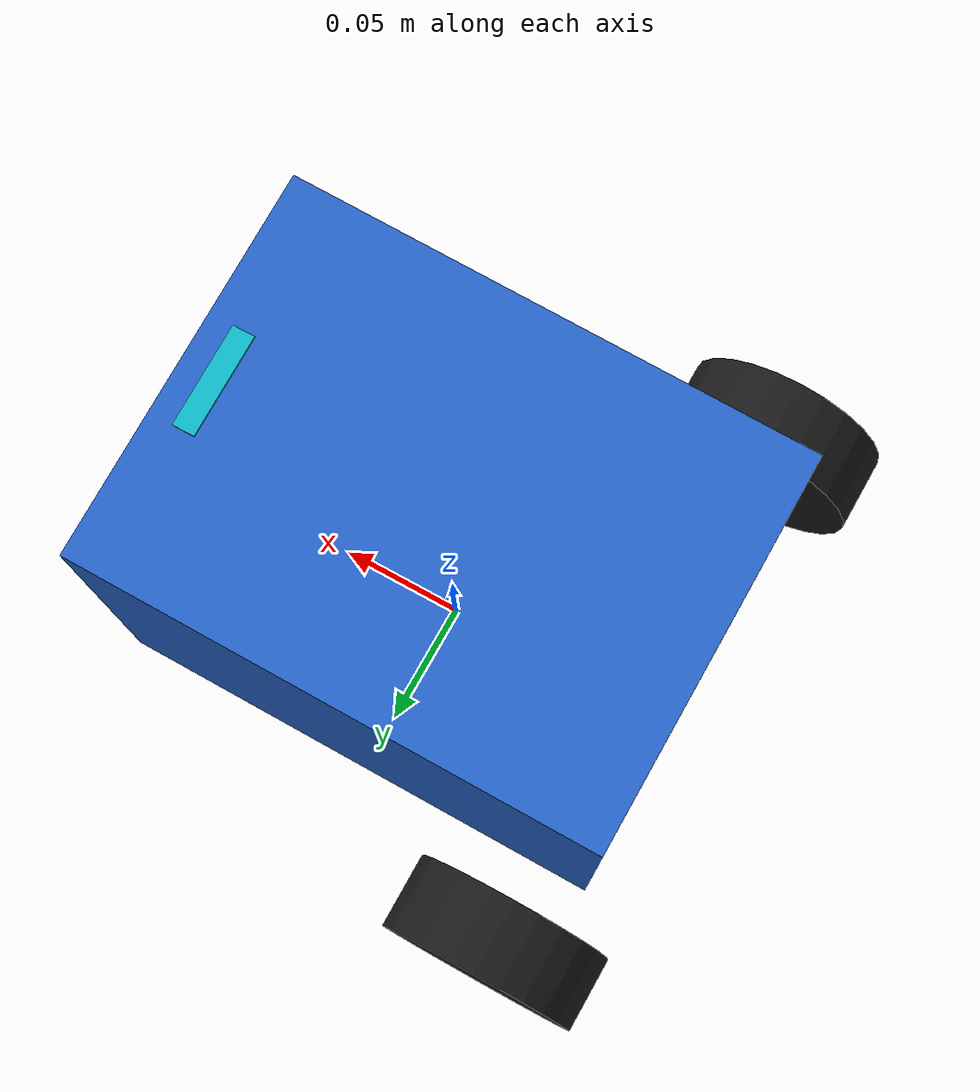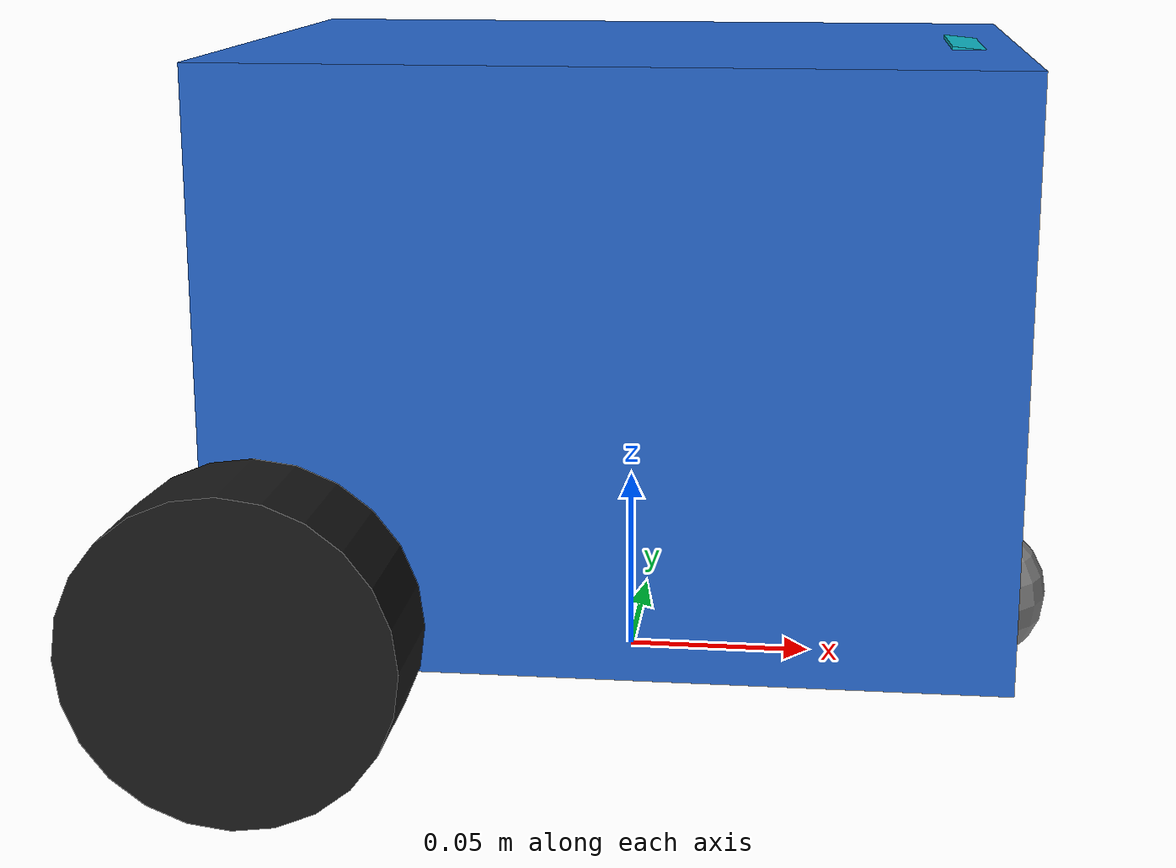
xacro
<?xml version="1.0"?>
<robot xmlns:xacro="http://www.ros.org/wiki/xacro" name="petbot">

  <!-- ===================== 几何参数 ===================== -->
  <!-- 主体：前后长 20cm × 宽 15cm × 高 15cm；质量加大且重心压低防翻 -->
  <xacro:property name="base_length" value="0.20"/>
  <xacro:property name="base_width" value="0.15"/>
  <xacro:property name="base_height" value="0.15"/>
  <xacro:property name="base_mass" value="15.0"/>

  <xacro:property name="wheel_radius" value="0.04"/>
  <xacro:property name="wheel_width" value="0.03"/>
  <xacro:property name="wheel_mass" value="0.5"/>
  <!-- 支撑三角形尽量铺开 -->
  <xacro:property name="wheel_separation" value="0.22"/>
  <xacro:property name="wheel_x_offset" value="-0.08"/>
  <xacro:property name="base_z" value="${wheel_radius}"/>
  <!-- 视觉厢体上移；惯性中心贴近轮轴高度，降低翻车力矩 -->
  <xacro:property name="base_z_offset" value="${base_height/2 - 0.02}"/>
  <xacro:property name="base_com_z" value="0.015"/>

  <xacro:property name="caster_radius" value="0.02"/>
  <xacro:property name="caster_mass" value="0.12"/>
  <xacro:property name="caster_x" value="${base_length/2 - 0.005}"/>

  <!-- Nebula280MIPI：头部（前面中间靠上），轻微上仰 -->
  <xacro:property name="nebula280_x" value="${base_length/2 - 0.01}"/>
  <xacro:property name="nebula280_z" value="${base_z_offset + base_height/2 - 0.008}"/>
  <xacro:property name="nebula280_pitch" value="0.10"/>

  <xacro:macro name="box_inertia" params="m l w h">
    <inertia
      ixx="${(m/12.0) * (w*w + h*h)}" ixy="0.0" ixz="0.0"
      iyy="${(m/12.0) * (l*l + h*h)}" iyz="0.0"
      izz="${(m/12.0) * (l*l + w*w)}"/>
  </xacro:macro>

  <xacro:macro name="cylinder_inertia" params="m r h">
    <inertia
      ixx="${(m/12.0) * (3*r*r + h*h)}" ixy="0.0" ixz="0.0"
      iyy="${(m/12.0) * (3*r*r + h*h)}" iyz="0.0"
      izz="${(m/2.0) * r*r}"/>
  </xacro:macro>

  <xacro:macro name="sphere_inertia" params="m r">
    <inertia
      ixx="${(2.0/5.0) * m * r*r}" ixy="0.0" ixz="0.0"
      iyy="${(2.0/5.0) * m * r*r}" iyz="0.0"
      izz="${(2.0/5.0) * m * r*r}"/>
  </xacro:macro>

  <material name="blue"><color rgba="0.15 0.40 0.80 1.0"/></material>
  <material name="black"><color rgba="0.10 0.10 0.10 1.0"/></material>
  <material name="gray"><color rgba="0.55 0.55 0.55 1.0"/></material>

  <link name="base_footprint"/>

  <joint name="base_joint" type="fixed">
    <parent link="base_footprint"/>
    <child link="base_link"/>
    <origin xyz="0 0 ${base_z}" rpy="0 0 0"/>
  </joint>

  <link name="base_link">
    <visual>
      <origin xyz="0 0 ${base_z_offset}" rpy="0 0 0"/>
      <geometry>
        <box size="${base_length} ${base_width} ${base_height}"/>
      </geometry>
      <material name="blue"/>
    </visual>
    <collision>
      <origin xyz="0 0 ${base_z_offset}" rpy="0 0 0"/>
      <geometry>
        <box size="${base_length} ${base_width} ${base_height}"/>
      </geometry>
    </collision>
    <inertial>
      <!-- 重心靠近轮轴高度，视觉仍用较高厢体 -->
      <origin xyz="0 0 ${base_com_z}" rpy="0 0 0"/>
      <mass value="${base_mass}"/>
      <xacro:box_inertia m="${base_mass}" l="${base_length}" w="${base_width}" h="${base_height * 0.35}"/>
    </inertial>
  </link>

  <xacro:macro name="drive_wheel" params="prefix y_reflect">
    <link name="${prefix}_wheel_link">
      <visual>
        <origin xyz="0 0 0" rpy="${pi/2} 0 0"/>
        <geometry>
          <cylinder radius="${wheel_radius}" length="${wheel_width}"/>
        </geometry>
        <material name="black"/>
      </visual>
      <collision>
        <origin xyz="0 0 0" rpy="0 0 0"/>
        <geometry>
          <sphere radius="${wheel_radius}"/>
        </geometry>
      </collision>
      <inertial>
        <origin xyz="0 0 0" rpy="${pi/2} 0 0"/>
        <mass value="${wheel_mass}"/>
        <xacro:cylinder_inertia m="${wheel_mass}" r="${wheel_radius}" h="${wheel_width}"/>
      </inertial>
    </link>

    <joint name="${prefix}_wheel_joint" type="continuous">
      <parent link="base_link"/>
      <child link="${prefix}_wheel_link"/>
      <origin xyz="${wheel_x_offset} ${y_reflect * wheel_separation / 2} 0" rpy="0 0 0"/>
      <axis xyz="0 1 0"/>
      <dynamics damping="0.2" friction="0.2"/>
    </joint>
  </xacro:macro>

  <xacro:drive_wheel prefix="left" y_reflect="1"/>
  <xacro:drive_wheel prefix="right" y_reflect="-1"/>

  <link name="caster_link">
    <visual>
      <origin xyz="0 0 0" rpy="0 0 0"/>
      <geometry>
        <sphere radius="${caster_radius}"/>
      </geometry>
      <material name="gray"/>
    </visual>
    <collision>
      <origin xyz="0 0 0" rpy="0 0 0"/>
      <geometry>
        <sphere radius="${caster_radius}"/>
      </geometry>
    </collision>
    <inertial>
      <origin xyz="0 0 0" rpy="0 0 0"/>
      <mass value="${caster_mass}"/>
      <xacro:sphere_inertia m="${caster_mass}" r="${caster_radius}"/>
    </inertial>
  </link>

  <joint name="caster_joint" type="fixed">
    <parent link="base_link"/>
    <child link="caster_link"/>
    <origin xyz="${caster_x} 0 ${-base_z + caster_radius}" rpy="0 0 0"/>
  </joint>

  <!-- 传感器：六轴 IMU + Nebula280MIPI -->
  <xacro:include filename="$(find petbot_description)/urdf/sensors/imu_6axis.urdf.xacro"/>
  <xacro:imu_6axis parent="base_link">
    <!-- 靠近底盘几何中心、略高于厢体底板 -->
    <origin xyz="0 0 ${base_z_offset - base_height/2 + 0.01}" rpy="0 0 0"/>
  </xacro:imu_6axis>

  <xacro:include filename="$(find petbot_description)/urdf/sensors/nebula280_mipi.urdf.xacro"/>
  <xacro:nebula280_mipi parent="base_link">
    <origin xyz="${nebula280_x} 0 ${nebula280_z}" rpy="0 ${nebula280_pitch} 0"/>
  </xacro:nebula280_mipi>

  <xacro:include filename="$(find petbot_description)/urdf/petbot.gazebo.xacro"/>

</robot>

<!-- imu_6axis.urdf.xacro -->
<!--
  六轴 IMU：3 轴加速度计 + 3 轴陀螺仪
  话题：/imu/data  (sensor_msgs/Imu)
  坐标系：imu_link（与车体平行，原点靠近底盘几何中心）
-->
<robot xmlns:xacro="http://www.ros.org/wiki/xacro">

  <xacro:macro name="imu_6axis" params="parent *origin">
    <xacro:property name="imu_size" value="0.012"/>
    <xacro:property name="imu_mass" value="0.01"/>

    <link name="imu_link">
      <visual>
        <origin xyz="0 0 0" rpy="0 0 0"/>
        <geometry>
          <box size="${imu_size} ${imu_size} ${imu_size * 0.5}"/>
        </geometry>
        <material name="imu_orange">
          <color rgba="0.95 0.45 0.05 1.0"/>
        </material>
      </visual>
      <collision>
        <origin xyz="0 0 0" rpy="0 0 0"/>
        <geometry>
          <box size="${imu_size} ${imu_size} ${imu_size * 0.5}"/>
        </geometry>
      </collision>
      <inertial>
        <origin xyz="0 0 0" rpy="0 0 0"/>
        <mass value="${imu_mass}"/>
        <inertia
          ixx="${(imu_mass/12.0)*(imu_size*imu_size*0.25 + imu_size*imu_size)}"
          ixy="0" ixz="0"
          iyy="${(imu_mass/12.0)*(imu_size*imu_size*0.25 + imu_size*imu_size)}"
          iyz="0"
          izz="${(imu_mass/12.0)*(imu_size*imu_size + imu_size*imu_size)}"/>
      </inertial>
    </link>

    <joint name="imu_joint" type="fixed">
      <parent link="${parent}"/>
      <child link="imu_link"/>
      <xacro:insert_block name="origin"/>
    </joint>

    <gazebo reference="imu_link">
      <material>Gazebo/Orange</material>
      <sensor name="imu_sensor" type="imu">
        <always_on>true</always_on>
        <update_rate>100</update_rate>
        <visualize>false</visualize>
        <imu>
          <angular_velocity>
            <x>
              <noise type="gaussian">
                <mean>0.0</mean>
                <stddev>0.0002</stddev>
                <bias_mean>0.00001</bias_mean>
                <bias_stddev>0.000001</bias_stddev>
              </noise>
            </x>
            <y>
              <noise type="gaussian">
                <mean>0.0</mean>
                <stddev>0.0002</stddev>
                <bias_mean>0.00001</bias_mean>
                <bias_stddev>0.000001</bias_stddev>
              </noise>
            </y>
            <z>
              <noise type="gaussian">
                <mean>0.0</mean>
                <stddev>0.0002</stddev>
                <bias_mean>0.00001</bias_mean>
                <bias_stddev>0.000001</bias_stddev>
              </noise>
            </z>
          </angular_velocity>
          <linear_acceleration>
            <x>
              <noise type="gaussian">
                <mean>0.0</mean>
                <stddev>0.017</stddev>
                <bias_mean>0.1</bias_mean>
                <bias_stddev>0.001</bias_stddev>
              </noise>
            </x>
            <y>
              <noise type="gaussian">
                <mean>0.0</mean>
                <stddev>0.017</stddev>
                <bias_mean>0.1</bias_mean>
                <bias_stddev>0.001</bias_stddev>
              </noise>
            </y>
            <z>
              <noise type="gaussian">
                <mean>0.0</mean>
                <stddev>0.017</stddev>
                <bias_mean>0.1</bias_mean>
                <bias_stddev>0.001</bias_stddev>
              </noise>
            </z>
          </linear_acceleration>
        </imu>
        <plugin name="imu_plugin" filename="libgazebo_ros_imu_sensor.so">
          <ros>
            <namespace>/imu</namespace>
            <remapping>~/out:=data</remapping>
          </ros>
          <initial_orientation_as_reference>false</initial_orientation_as_reference>
        </plugin>
      </sensor>
    </gazebo>
  </xacro:macro>

</robot>

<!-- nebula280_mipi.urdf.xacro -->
<robot xmlns:xacro="http://www.ros.org/wiki/xacro">

  <xacro:macro name="nebula280_mipi" params="parent *origin">
    <xacro:property name="n280_l" value="0.0392"/>
    <xacro:property name="n280_w" value="0.0170"/>
    <xacro:property name="n280_h" value="0.0161"/>
    <xacro:property name="n280_mass" value="0.035"/>

    <link name="nebula280_link">
      <visual>
        <origin xyz="0 0 0" rpy="0 0 0"/>
        <geometry>
          <!-- L 沿车宽(Y)，W 沿光轴(X)，H 沿高度(Z) -->
          <box size="${n280_w} ${n280_l} ${n280_h}"/>
        </geometry>
        <material name="nebula_cyan">
          <color rgba="0.05 0.72 0.78 1.0"/>
        </material>
      </visual>
      <collision>
        <origin xyz="0 0 0" rpy="0 0 0"/>
        <geometry>
          <box size="${n280_w} ${n280_l} ${n280_h}"/>
        </geometry>
      </collision>
      <inertial>
        <origin xyz="0 0 0" rpy="0 0 0"/>
        <mass value="${n280_mass}"/>
        <inertia
          ixx="${(n280_mass/12.0)*(n280_l*n280_l + n280_h*n280_h)}" ixy="0" ixz="0"
          iyy="${(n280_mass/12.0)*(n280_w*n280_w + n280_h*n280_h)}" iyz="0"
          izz="${(n280_mass/12.0)*(n280_w*n280_w + n280_l*n280_l)}"/>
      </inertial>
    </link>

    <joint name="nebula280_joint" type="fixed">
      <parent link="${parent}"/>
      <child link="nebula280_link"/>
      <xacro:insert_block name="origin"/>
    </joint>

    <!-- REP-103 optical frame: Z forward, X right, Y down.
         Gazebo camera/depth points are published in this convention;
         keep sensor on nebula280_link and only stamp messages with optical. -->
    <link name="nebula280_optical_frame"/>
    <joint name="nebula280_optical_joint" type="fixed">
      <parent link="nebula280_link"/>
      <child link="nebula280_optical_frame"/>
      <origin xyz="0 0 0" rpy="${-pi/2} 0 ${-pi/2}"/>
    </joint>

    <gazebo reference="nebula280_link">
      <material>Gazebo/Turquoise</material>

      <!-- ========== RGB 彩色 ========== -->
      <sensor name="nebula280_color" type="camera">
        <always_on>true</always_on>
        <visualize>false</visualize>
        <update_rate>10</update_rate>
        <camera name="color">
          <horizontal_fov>1.74533</horizontal_fov>
          <image>
            <width>640</width>
            <height>360</height>
            <format>R8G8B8</format>
          </image>
          <clip>
            <near>0.05</near>
            <far>20.0</far>
          </clip>
          <noise>
            <type>gaussian</type>
            <mean>0.0</mean>
            <stddev>0.007</stddev>
          </noise>
        </camera>
        <plugin name="nebula280_color_controller" filename="libgazebo_ros_camera.so">
          <ros>
            <namespace>/nebula280</namespace>
            <remapping>color/image_raw:=color/image_raw</remapping>
            <remapping>color/camera_info:=color/camera_info</remapping>
          </ros>
          <camera_name>color</camera_name>
          <frame_name>nebula280_optical_frame</frame_name>
        </plugin>
      </sensor>

      <!-- ========== IR 红外（单通道近似） ========== -->
      <sensor name="nebula280_ir" type="camera">
        <always_on>true</always_on>
        <visualize>false</visualize>
        <update_rate>10</update_rate>
        <camera name="ir">
          <horizontal_fov>1.74533</horizontal_fov>
          <image>
            <width>248</width>
            <height>180</height>
            <format>L8</format>
          </image>
          <clip>
            <near>0.05</near>
            <far>12.0</far>
          </clip>
          <noise>
            <type>gaussian</type>
            <mean>0.0</mean>
            <stddev>0.01</stddev>
          </noise>
        </camera>
        <plugin name="nebula280_ir_controller" filename="libgazebo_ros_camera.so">
          <ros>
            <namespace>/nebula280</namespace>
            <remapping>ir/image_raw:=ir/image_raw</remapping>
            <remapping>ir/camera_info:=ir/camera_info</remapping>
          </ros>
          <camera_name>ir</camera_name>
          <frame_name>nebula280_optical_frame</frame_name>
        </plugin>
      </sensor>

      <!-- ========== sToF：近距避障（10~120 cm，248×120，VFOV≈54°） ========== -->
      <sensor name="nebula280_stof" type="depth">
        <always_on>true</always_on>
        <visualize>false</visualize>
        <update_rate>10</update_rate>
        <camera name="stof">
          <horizontal_fov>1.74533</horizontal_fov>
          <image>
            <width>248</width>
            <height>120</height>
            <format>R8G8B8</format>
          </image>
          <clip>
            <near>0.05</near>
            <far>1.5</far>
          </clip>
          <noise>
            <type>gaussian</type>
            <mean>0.0</mean>
            <stddev>0.005</stddev>
          </noise>
        </camera>
        <plugin name="nebula280_stof_controller" filename="libgazebo_ros_camera.so">
          <ros>
            <namespace>/nebula280</namespace>
            <remapping>stof/image_raw:=stof/amplitude/image_raw</remapping>
            <remapping>stof/depth/image_raw:=stof/depth/image_raw</remapping>
            <remapping>stof/camera_info:=stof/amplitude/camera_info</remapping>
            <remapping>stof/depth/camera_info:=stof/depth/camera_info</remapping>
            <remapping>stof/points:=stof/points</remapping>
          </ros>
          <camera_name>stof</camera_name>
          <frame_name>nebula280_optical_frame</frame_name>
          <min_depth>0.10</min_depth>
          <max_depth>1.20</max_depth>
        </plugin>
      </sensor>

      <!-- ========== mToF：中远距 SLAM（至约 8 m，248×180，VFOV≈75°） ========== -->
      <sensor name="nebula280_mtof" type="depth">
        <always_on>true</always_on>
        <visualize>false</visualize>
        <update_rate>10</update_rate>
        <camera name="mtof">
          <horizontal_fov>1.74533</horizontal_fov>
          <image>
            <width>248</width>
            <height>180</height>
            <format>R8G8B8</format>
          </image>
          <clip>
            <near>0.05</near>
            <far>10.0</far>
          </clip>
          <noise>
            <type>gaussian</type>
            <mean>0.0</mean>
            <stddev>0.01</stddev>
          </noise>
        </camera>
        <plugin name="nebula280_mtof_controller" filename="libgazebo_ros_camera.so">
          <ros>
            <namespace>/nebula280</namespace>
            <remapping>mtof/image_raw:=mtof/amplitude/image_raw</remapping>
            <remapping>mtof/depth/image_raw:=mtof/depth/image_raw</remapping>
            <remapping>mtof/camera_info:=mtof/amplitude/camera_info</remapping>
            <remapping>mtof/depth/camera_info:=mtof/depth/camera_info</remapping>
            <remapping>mtof/points:=mtof/points</remapping>
          </ros>
          <camera_name>mtof</camera_name>
          <frame_name>nebula280_optical_frame</frame_name>
          <min_depth>0.10</min_depth>
          <max_depth>8.0</max_depth>
        </plugin>
      </sensor>
    </gazebo>
  </xacro:macro>

</robot>
